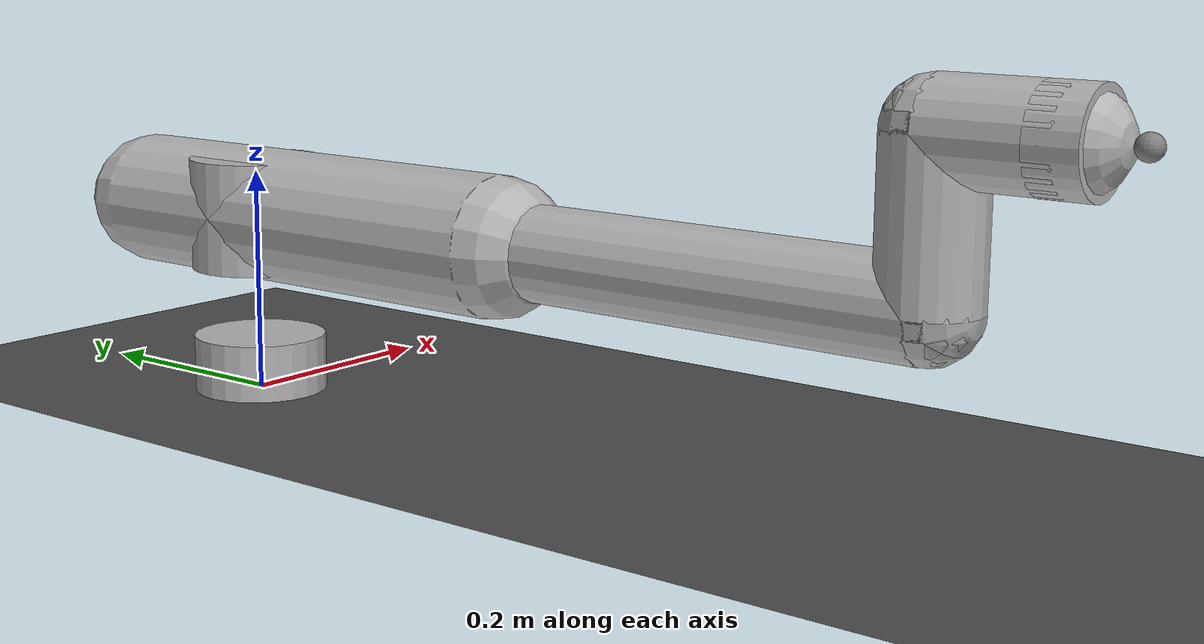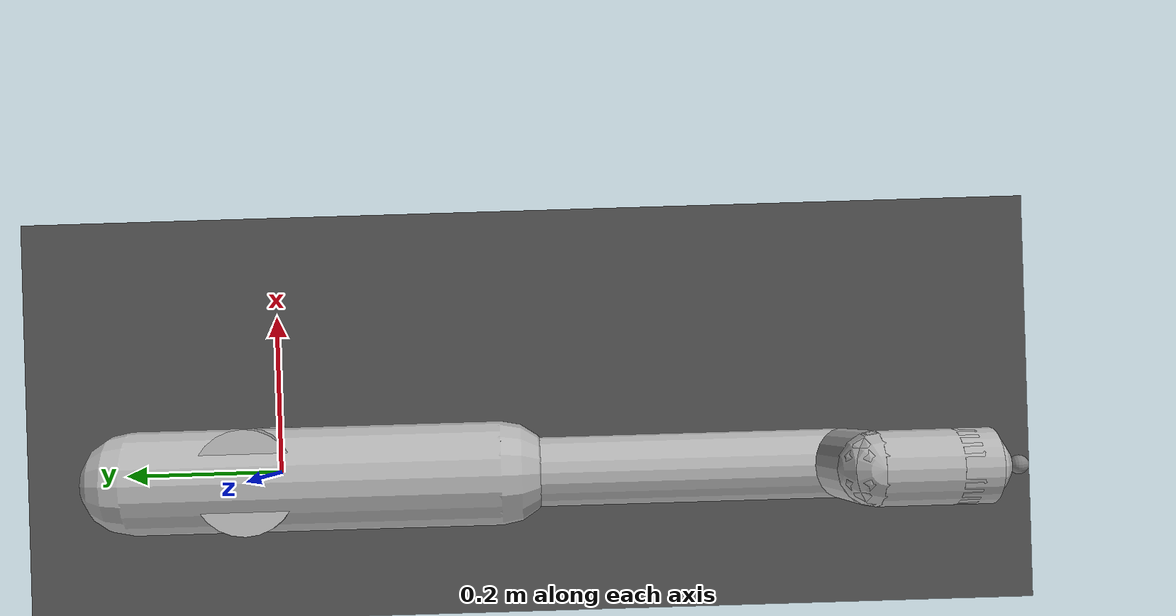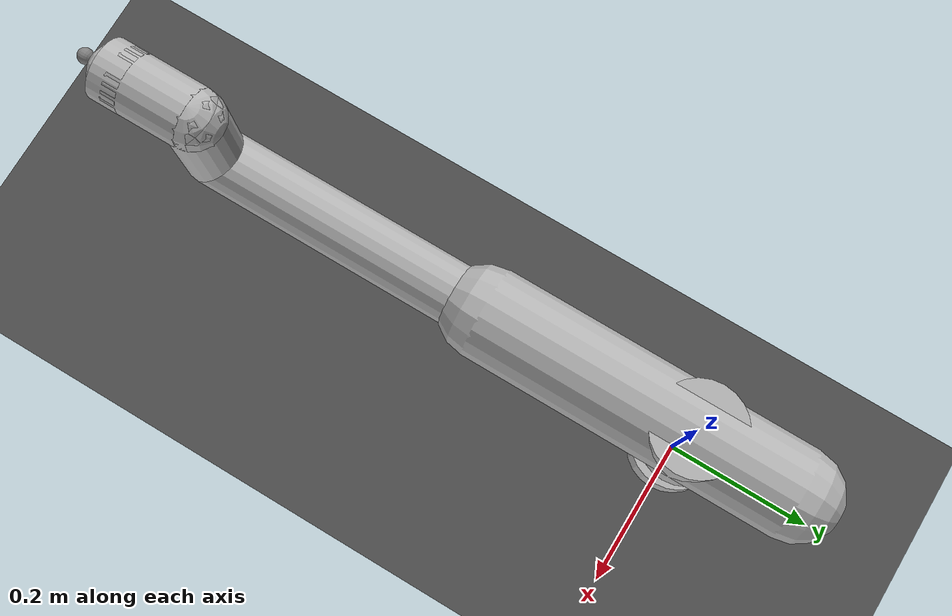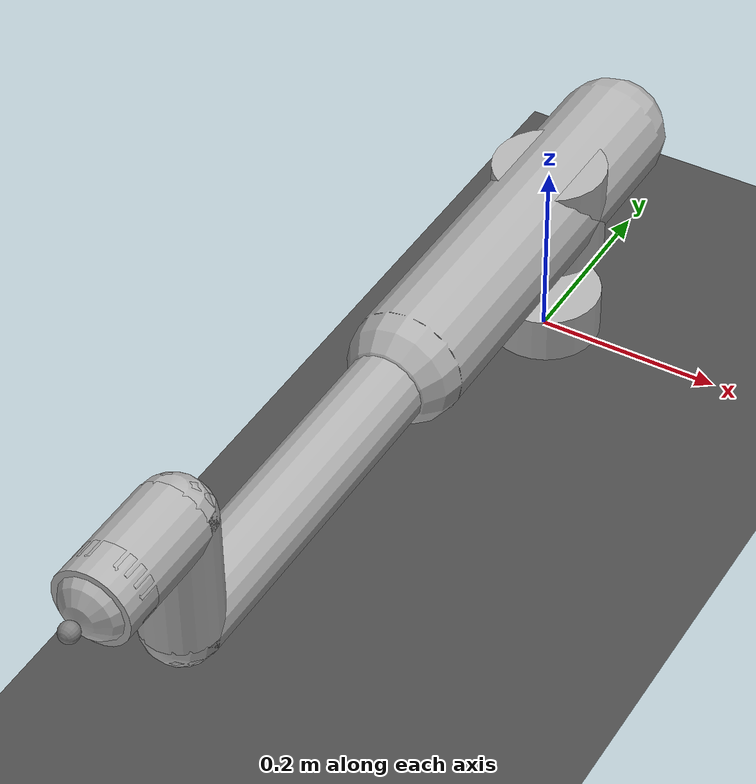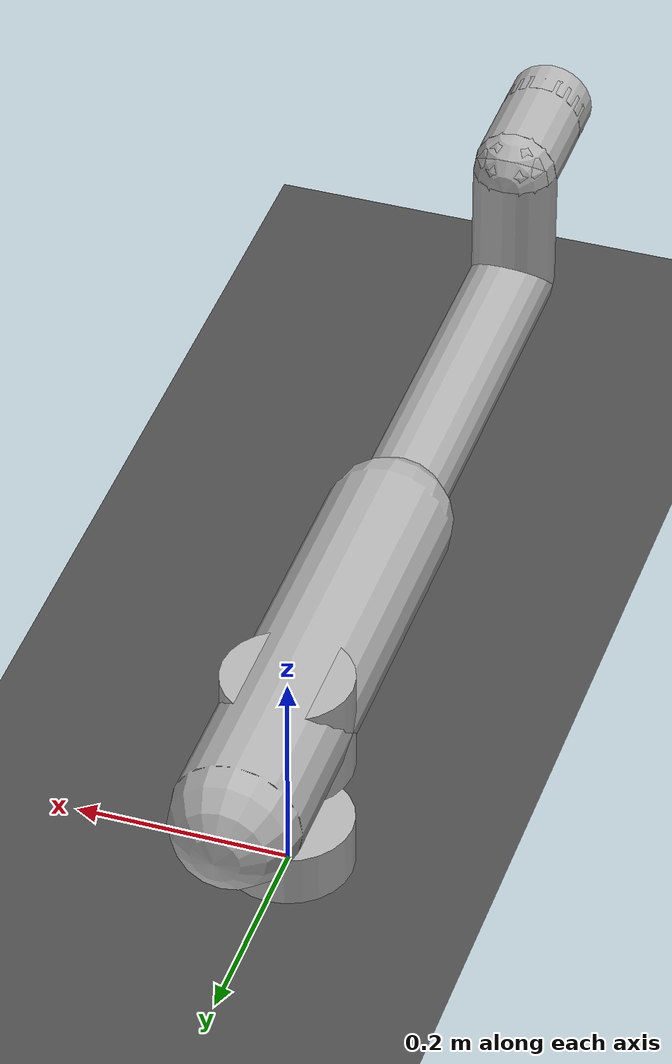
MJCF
<?xml version="1.0" ?>
<mujoco model="ur5e">
    <compiler angle="radian" balanceinertia="true"/>

    <option gravity="0 0 -9.81" />

    <size nstack="3000" />

    <asset>
        <material name="robot_material" rgba="0.7 0.7 0.7 1" />
        <material name="ground_material" rgba="0.3 0.3 0.3 1" />
    </asset>

    <worldbody>
        <!-- Ground plane -->
        <geom name="ground" type="plane" size="2 2 0.1" pos="0 0 0" material="ground_material"/>

        <!-- UR5e Robot -->
        <body name="base" pos="0 0 0">
            <inertial pos="0 0 0" mass="4.0" diaginertia="0.0072 0.0072 0.0072" />
            <geom name="base" type="cylinder" size="0.06 0.05" material="robot_material" />

            <body name="shoulder" pos="0 0 0.163">
                <inertial pos="0 0 0" mass="3.7" diaginertia="0.0104 0.0104 0.0104" />
                <joint name="shoulder_pan" type="hinge" axis="0 0 1" limited="true" range="-6.28319 6.28319" />
                <geom name="shoulder" type="cylinder" size="0.06 0.05" material="robot_material" />

                <body name="upper_arm" pos="0 0.138 0" euler="1.57079632679 0 0">
                    <inertial pos="0 0 0.2125" mass="8.393" diaginertia="0.1339 0.1339 0.1339" />
                    <joint name="shoulder_lift" type="hinge" axis="0 0 1" limited="true" range="-6.28319 6.28319" />
                    <geom name="upper_arm" type="capsule" size="0.06" fromto="0 0 0 0 0 0.425" material="robot_material" />

                    <body name="forearm" pos="0 0 0.425">
                        <inertial pos="0 0 0.196" mass="2.275" diaginertia="0.0312 0.0312 0.0312" />
                        <joint name="elbow" type="hinge" axis="0 0 1" limited="true" range="-3.14159 3.14159" />
                        <geom name="forearm" type="capsule" size="0.04" fromto="0 0 0 0 0 0.392" material="robot_material" />

                        <body name="wrist_1" pos="0 0 0.392">
                            <inertial pos="0 0 0" mass="1.219" diaginertia="0.0053 0.0053 0.0053" />
                            <joint name="wrist_1" type="hinge" axis="0 0 1" limited="true" range="-6.28319 6.28319" />
                            <geom name="wrist_1" type="capsule" size="0.04" fromto="0 0 0 0 0.127 0" material="robot_material" />

                            <body name="wrist_2" pos="0 0.127 0">
                                <inertial pos="0 0 0" mass="1.219" diaginertia="0.0053 0.0053 0.0053" />
                                <joint name="wrist_2" type="hinge" axis="0 0 1" limited="true" range="-6.28319 6.28319" />
                                <geom name="wrist_2" type="capsule" size="0.04" fromto="0 0 0 0 0 0.1" material="robot_material" />

                                <body name="wrist_3" pos="0 0 0.1">
                                    <inertial pos="0 0 0" mass="0.1879" diaginertia="0.0340 0.0340 0.0340" />
                                    <joint name="wrist_3" type="hinge" axis="0 0 1" limited="true" range="-6.28319 6.28319" />
                                    <geom name="wrist_3" type="cylinder" size="0.04 0.02" material="robot_material" />

                                    <!-- End effector site -->
                                    <site name="ee_site" pos="0 0 0.05" size="0.01" />
                                </body>
                            </body>
                        </body>
                    </body>
                </body>
            </body>
        </body>
    </worldbody>

    <actuator>
        <motor joint="shoulder_pan" name="shoulder_pan_motor" gear="100" />
        <motor joint="shoulder_lift" name="shoulder_lift_motor" gear="100" />
        <motor joint="elbow" name="elbow_motor" gear="100" />
        <motor joint="wrist_1" name="wrist_1_motor" gear="100" />
        <motor joint="wrist_2" name="wrist_2_motor" gear="100" />
        <motor joint="wrist_3" name="wrist_3_motor" gear="100" />
    </actuator>
</mujoco>
